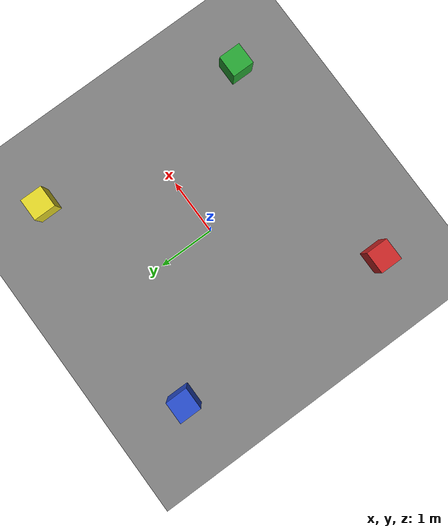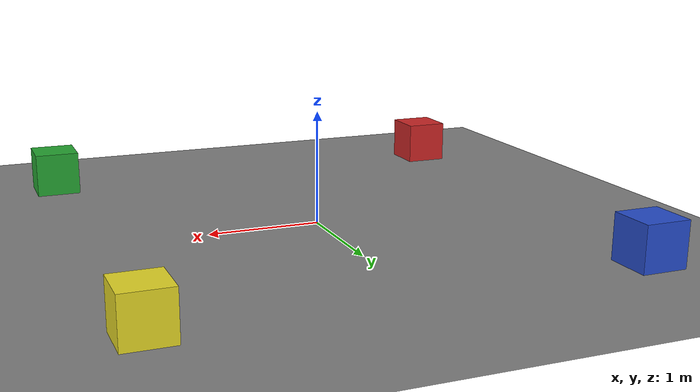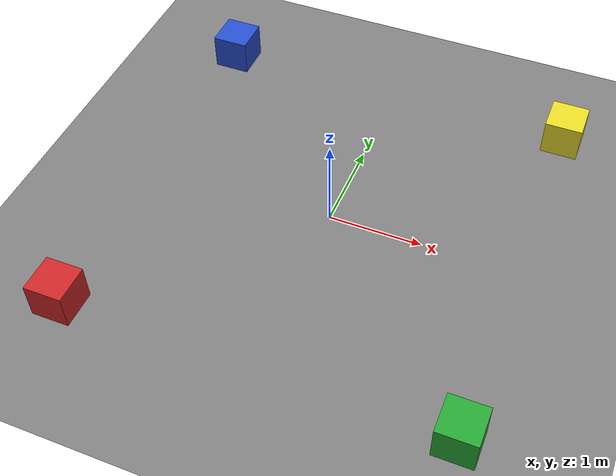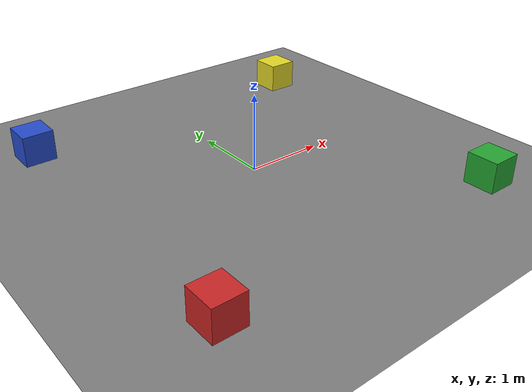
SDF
<?xml version="1.0"?>
<sdf version="1.6">
  <world name="landmark_world">
    <light type="directional" name="sun">
      <cast_shadows>false</cast_shadows>
      <pose>0 0 10 0 0 0</pose>
      <diffuse>0.9 0.9 0.9 1</diffuse>
      <specular>0.1 0.1 0.1 1</specular>
      <direction>-0.5 0.1 -0.9</direction>
    </light>

    <model name="ground_plane">
      <static>true</static>
      <link name="link">
        <collision name="c"><geometry><plane><normal>0 0 1</normal><size>8 8</size></plane></geometry></collision>
        <visual name="v">
          <geometry><plane><normal>0 0 1</normal><size>8 8</size></plane></geometry>
          <material><ambient>0.5 0.5 0.5 1</ambient><diffuse>0.5 0.5 0.5 1</diffuse></material>
        </visual>
      </link>
    </model>

    <model name="landmark_red">
      <static>true</static><pose>-2 -2 0.2 0 0 0</pose>
      <link name="link">
        <collision name="c"><geometry><box><size>0.4 0.4 0.4</size></box></geometry></collision>
        <visual name="v"><geometry><box><size>0.4 0.4 0.4</size></box></geometry>
          <material><script><name>Gazebo/Red</name></script></material></visual>
      </link>
    </model>

    <model name="landmark_green">
      <static>true</static><pose>2 -2 0.2 0 0 0</pose>
      <link name="link">
        <collision name="c"><geometry><box><size>0.4 0.4 0.4</size></box></geometry></collision>
        <visual name="v"><geometry><box><size>0.4 0.4 0.4</size></box></geometry>
          <material><script><name>Gazebo/Green</name></script></material></visual>
      </link>
    </model>

    <model name="landmark_blue">
      <static>true</static><pose>-2 2 0.2 0 0 0</pose>
      <link name="link">
        <collision name="c"><geometry><box><size>0.4 0.4 0.4</size></box></geometry></collision>
        <visual name="v"><geometry><box><size>0.4 0.4 0.4</size></box></geometry>
          <material><script><name>Gazebo/Blue</name></script></material></visual>
      </link>
    </model>

    <model name="landmark_yellow">
      <static>true</static><pose>2 2 0.2 0 0 0</pose>
      <link name="link">
        <collision name="c"><geometry><box><size>0.4 0.4 0.4</size></box></geometry></collision>
        <visual name="v"><geometry><box><size>0.4 0.4 0.4</size></box></geometry>
          <material><script><name>Gazebo/Yellow</name></script></material></visual>
      </link>
    </model>

    <plugin name="gazebo_ros_state" filename="libgazebo_ros_state.so">
      <update_rate>50.0</update_rate>
      <!-- Without this namespace the plugin advertises /model_states and /link_states at
           the root, while every consumer here subscribes to /gazebo/model_states. -->
      <ros>
        <namespace>/gazebo</namespace>
      </ros>
    </plugin>

    <physics type="ode">
      <max_step_size>0.001</max_step_size>
      <real_time_update_rate>1000</real_time_update_rate>
    </physics>

    <gui fullscreen="0">
      <camera name="user_camera">
        <pose>0 0 7 0 1.570796 1.570796</pose>
      </camera>
    </gui>
  </world>
</sdf>
